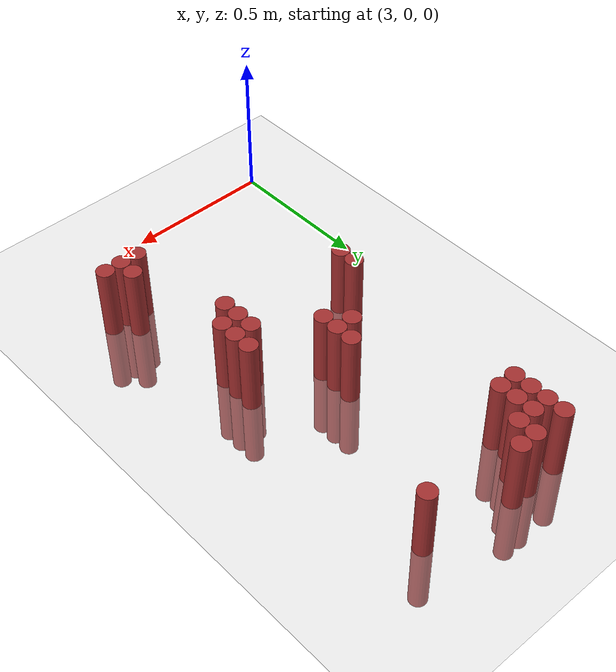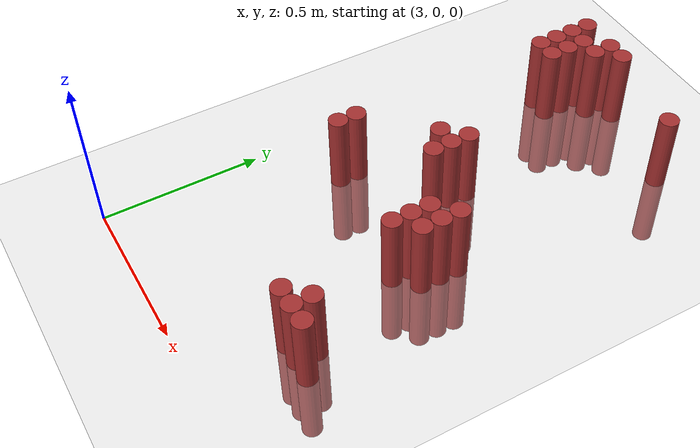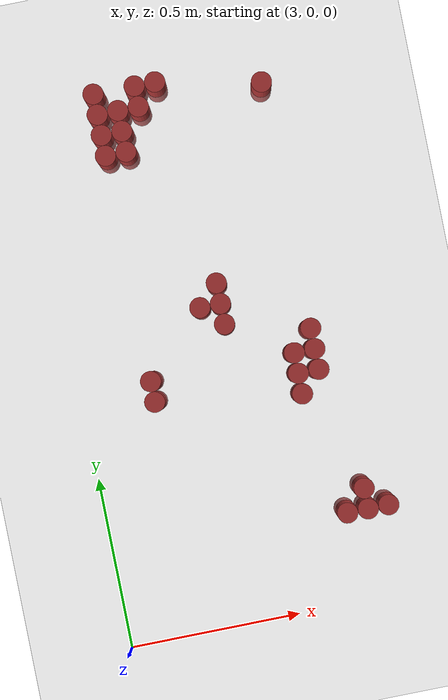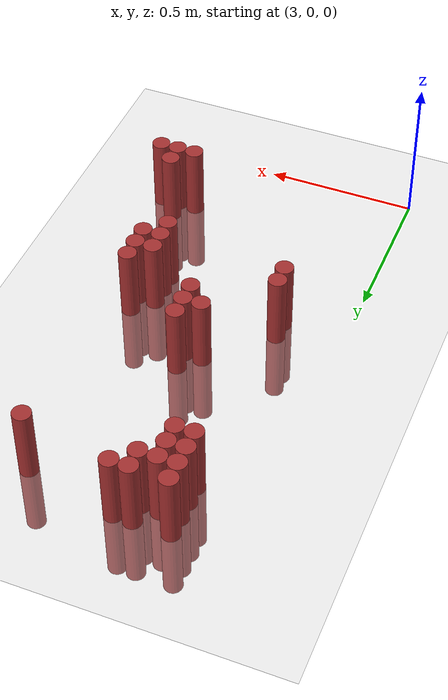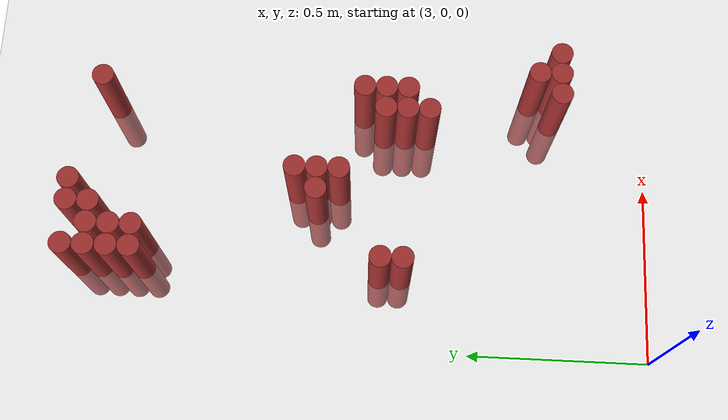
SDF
<sdf version="1.6">
 <world name="default">
  <model name="ground_plane">
   <static>1</static>
   <link name="link">
    <collision name="collision">
     <geometry><plane><normal>0 0 1</normal><size>100 100</size></plane></geometry>
     <surface><friction><ode><mu>100</mu><mu2>50</mu2></ode></friction></surface>
    </collision>
    <visual name="visual">
     <cast_shadows>0</cast_shadows>
     <geometry><plane><normal>0 0 1</normal><size>100 100</size></plane></geometry>
     <material>
      <script><uri>file://media/materials/scripts/gazebo.material</uri><name>Gazebo/Grey</name></script>
     </material>
    </visual>
   </link>
  </model>
  <model name="unit_cylinder_145">
   <static>1</static>
   <pose>3.210000 1.590000 0.000000 0.000000 0.000000 0.000000</pose>
   <link name="link">
    <inertial>
     <mass>1</mass>
     <inertia><ixx>0.145833</ixx><ixy>0</ixy><ixz>0</ixz><iyy>0.145833</iyy><iyz>0</iyz><izz>0.125</izz></inertia>
    </inertial>
    <collision name="collision">
     <geometry><cylinder><radius>0.030000</radius><length>0.5</length></cylinder></geometry>
    </collision>
    <visual name="visual">
     <geometry><cylinder><radius>0.030000</radius><length>0.5</length></cylinder></geometry>
     <material>
      <ambient>0.648000 0.192000 0.192000 1</ambient>
      <diffuse>0.648000 0.192000 0.192000 1</diffuse>
     </material>
     <material>
      <script><name>Gazebo/Grey</name><uri>file://media/materials/scripts/gazebo.material</uri></script>
     </material>
    </visual>
   </link>
  </model>
  <model name="unit_cylinder_146">
   <static>1</static>
   <pose>3.330000 1.590000 0.000000 0.000000 0.000000 0.000000</pose>
   <link name="link">
    <inertial>
     <mass>1</mass>
     <inertia><ixx>0.145833</ixx><ixy>0</ixy><ixz>0</ixz><iyy>0.145833</iyy><iyz>0</iyz><izz>0.125</izz></inertia>
    </inertial>
    <collision name="collision">
     <geometry><cylinder><radius>0.030000</radius><length>0.5</length></cylinder></geometry>
    </collision>
    <visual name="visual">
     <geometry><cylinder><radius>0.030000</radius><length>0.5</length></cylinder></geometry>
     <material>
      <ambient>0.648000 0.192000 0.192000 1</ambient>
      <diffuse>0.648000 0.192000 0.192000 1</diffuse>
     </material>
     <material>
      <script><name>Gazebo/Grey</name><uri>file://media/materials/scripts/gazebo.material</uri></script>
     </material>
    </visual>
   </link>
  </model>
  <model name="unit_cylinder_147">
   <static>1</static>
   <pose>3.390000 1.590000 0.000000 0.000000 0.000000 0.000000</pose>
   <link name="link">
    <inertial>
     <mass>1</mass>
     <inertia><ixx>0.145833</ixx><ixy>0</ixy><ixz>0</ixz><iyy>0.145833</iyy><iyz>0</iyz><izz>0.125</izz></inertia>
    </inertial>
    <collision name="collision">
     <geometry><cylinder><radius>0.030000</radius><length>0.5</length></cylinder></geometry>
    </collision>
    <visual name="visual">
     <geometry><cylinder><radius>0.030000</radius><length>0.5</length></cylinder></geometry>
     <material>
      <ambient>0.648000 0.192000 0.192000 1</ambient>
      <diffuse>0.648000 0.192000 0.192000 1</diffuse>
     </material>
     <material>
      <script><name>Gazebo/Grey</name><uri>file://media/materials/scripts/gazebo.material</uri></script>
     </material>
    </visual>
   </link>
  </model>
  <model name="unit_cylinder_156">
   <static>1</static>
   <pose>3.210000 1.530000 0.000000 0.000000 0.000000 0.000000</pose>
   <link name="link">
    <inertial>
     <mass>1</mass>
     <inertia><ixx>0.145833</ixx><ixy>0</ixy><ixz>0</ixz><iyy>0.145833</iyy><iyz>0</iyz><izz>0.125</izz></inertia>
    </inertial>
    <collision name="collision">
     <geometry><cylinder><radius>0.030000</radius><length>0.5</length></cylinder></geometry>
    </collision>
    <visual name="visual">
     <geometry><cylinder><radius>0.030000</radius><length>0.5</length></cylinder></geometry>
     <material>
      <ambient>0.648000 0.192000 0.192000 1</ambient>
      <diffuse>0.648000 0.192000 0.192000 1</diffuse>
     </material>
     <material>
      <script><name>Gazebo/Grey</name><uri>file://media/materials/scripts/gazebo.material</uri></script>
     </material>
    </visual>
   </link>
  </model>
  <model name="unit_cylinder_157">
   <static>1</static>
   <pose>3.270000 1.530000 0.000000 0.000000 0.000000 0.000000</pose>
   <link name="link">
    <inertial>
     <mass>1</mass>
     <inertia><ixx>0.145833</ixx><ixy>0</ixy><ixz>0</ixz><iyy>0.145833</iyy><iyz>0</iyz><izz>0.125</izz></inertia>
    </inertial>
    <collision name="collision">
     <geometry><cylinder><radius>0.030000</radius><length>0.5</length></cylinder></geometry>
    </collision>
    <visual name="visual">
     <geometry><cylinder><radius>0.030000</radius><length>0.5</length></cylinder></geometry>
     <material>
      <ambient>0.648000 0.192000 0.192000 1</ambient>
      <diffuse>0.648000 0.192000 0.192000 1</diffuse>
     </material>
     <material>
      <script><name>Gazebo/Grey</name><uri>file://media/materials/scripts/gazebo.material</uri></script>
     </material>
    </visual>
   </link>
  </model>
  <model name="unit_cylinder_158">
   <static>1</static>
   <pose>3.330000 1.530000 0.000000 0.000000 0.000000 0.000000</pose>
   <link name="link">
    <inertial>
     <mass>1</mass>
     <inertia><ixx>0.145833</ixx><ixy>0</ixy><ixz>0</ixz><iyy>0.145833</iyy><iyz>0</iyz><izz>0.125</izz></inertia>
    </inertial>
    <collision name="collision">
     <geometry><cylinder><radius>0.030000</radius><length>0.5</length></cylinder></geometry>
    </collision>
    <visual name="visual">
     <geometry><cylinder><radius>0.030000</radius><length>0.5</length></cylinder></geometry>
     <material>
      <ambient>0.648000 0.192000 0.192000 1</ambient>
      <diffuse>0.648000 0.192000 0.192000 1</diffuse>
     </material>
     <material>
      <script><name>Gazebo/Grey</name><uri>file://media/materials/scripts/gazebo.material</uri></script>
     </material>
    </visual>
   </link>
  </model>
  <model name="unit_cylinder_159">
   <static>1</static>
   <pose>3.690000 1.530000 0.000000 0.000000 0.000000 0.000000</pose>
   <link name="link">
    <inertial>
     <mass>1</mass>
     <inertia><ixx>0.145833</ixx><ixy>0</ixy><ixz>0</ixz><iyy>0.145833</iyy><iyz>0</iyz><izz>0.125</izz></inertia>
    </inertial>
    <collision name="collision">
     <geometry><cylinder><radius>0.030000</radius><length>0.5</length></cylinder></geometry>
    </collision>
    <visual name="visual">
     <geometry><cylinder><radius>0.030000</radius><length>0.5</length></cylinder></geometry>
     <material>
      <ambient>0.648000 0.192000 0.192000 1</ambient>
      <diffuse>0.648000 0.192000 0.192000 1</diffuse>
     </material>
     <material>
      <script><name>Gazebo/Grey</name><uri>file://media/materials/scripts/gazebo.material</uri></script>
     </material>
    </visual>
   </link>
  </model>
  <model name="unit_cylinder_164">
   <static>1</static>
   <pose>3.210000 1.470000 0.000000 0.000000 0.000000 0.000000</pose>
   <link name="link">
    <inertial>
     <mass>1</mass>
     <inertia><ixx>0.145833</ixx><ixy>0</ixy><ixz>0</ixz><iyy>0.145833</iyy><iyz>0</iyz><izz>0.125</izz></inertia>
    </inertial>
    <collision name="collision">
     <geometry><cylinder><radius>0.030000</radius><length>0.5</length></cylinder></geometry>
    </collision>
    <visual name="visual">
     <geometry><cylinder><radius>0.030000</radius><length>0.5</length></cylinder></geometry>
     <material>
      <ambient>0.648000 0.192000 0.192000 1</ambient>
      <diffuse>0.648000 0.192000 0.192000 1</diffuse>
     </material>
     <material>
      <script><name>Gazebo/Grey</name><uri>file://media/materials/scripts/gazebo.material</uri></script>
     </material>
    </visual>
   </link>
  </model>
  <model name="unit_cylinder_165">
   <static>1</static>
   <pose>3.270000 1.470000 0.000000 0.000000 0.000000 0.000000</pose>
   <link name="link">
    <inertial>
     <mass>1</mass>
     <inertia><ixx>0.145833</ixx><ixy>0</ixy><ixz>0</ixz><iyy>0.145833</iyy><iyz>0</iyz><izz>0.125</izz></inertia>
    </inertial>
    <collision name="collision">
     <geometry><cylinder><radius>0.030000</radius><length>0.5</length></cylinder></geometry>
    </collision>
    <visual name="visual">
     <geometry><cylinder><radius>0.030000</radius><length>0.5</length></cylinder></geometry>
     <material>
      <ambient>0.648000 0.192000 0.192000 1</ambient>
      <diffuse>0.648000 0.192000 0.192000 1</diffuse>
     </material>
     <material>
      <script><name>Gazebo/Grey</name><uri>file://media/materials/scripts/gazebo.material</uri></script>
     </material>
    </visual>
   </link>
  </model>
  <model name="unit_cylinder_168">
   <static>1</static>
   <pose>3.210000 1.410000 0.000000 0.000000 0.000000 0.000000</pose>
   <link name="link">
    <inertial>
     <mass>1</mass>
     <inertia><ixx>0.145833</ixx><ixy>0</ixy><ixz>0</ixz><iyy>0.145833</iyy><iyz>0</iyz><izz>0.125</izz></inertia>
    </inertial>
    <collision name="collision">
     <geometry><cylinder><radius>0.030000</radius><length>0.5</length></cylinder></geometry>
    </collision>
    <visual name="visual">
     <geometry><cylinder><radius>0.030000</radius><length>0.5</length></cylinder></geometry>
     <material>
      <ambient>0.648000 0.192000 0.192000 1</ambient>
      <diffuse>0.648000 0.192000 0.192000 1</diffuse>
     </material>
     <material>
      <script><name>Gazebo/Grey</name><uri>file://media/materials/scripts/gazebo.material</uri></script>
     </material>
    </visual>
   </link>
  </model>
  <model name="unit_cylinder_169">
   <static>1</static>
   <pose>3.270000 1.410000 0.000000 0.000000 0.000000 0.000000</pose>
   <link name="link">
    <inertial>
     <mass>1</mass>
     <inertia><ixx>0.145833</ixx><ixy>0</ixy><ixz>0</ixz><iyy>0.145833</iyy><iyz>0</iyz><izz>0.125</izz></inertia>
    </inertial>
    <collision name="collision">
     <geometry><cylinder><radius>0.030000</radius><length>0.5</length></cylinder></geometry>
    </collision>
    <visual name="visual">
     <geometry><cylinder><radius>0.030000</radius><length>0.5</length></cylinder></geometry>
     <material>
      <ambient>0.648000 0.192000 0.192000 1</ambient>
      <diffuse>0.648000 0.192000 0.192000 1</diffuse>
     </material>
     <material>
      <script><name>Gazebo/Grey</name><uri>file://media/materials/scripts/gazebo.material</uri></script>
     </material>
    </visual>
   </link>
  </model>
  <model name="unit_cylinder_183">
   <static>1</static>
   <pose>3.450000 0.990000 0.000000 0.000000 0.000000 0.000000</pose>
   <link name="link">
    <inertial>
     <mass>1</mass>
     <inertia><ixx>0.145833</ixx><ixy>0</ixy><ixz>0</ixz><iyy>0.145833</iyy><iyz>0</iyz><izz>0.125</izz></inertia>
    </inertial>
    <collision name="collision">
     <geometry><cylinder><radius>0.030000</radius><length>0.5</length></cylinder></geometry>
    </collision>
    <visual name="visual">
     <geometry><cylinder><radius>0.030000</radius><length>0.5</length></cylinder></geometry>
     <material>
      <ambient>0.648000 0.192000 0.192000 1</ambient>
      <diffuse>0.648000 0.192000 0.192000 1</diffuse>
     </material>
     <material>
      <script><name>Gazebo/Grey</name><uri>file://media/materials/scripts/gazebo.material</uri></script>
     </material>
    </visual>
   </link>
  </model>
  <model name="unit_cylinder_185">
   <static>1</static>
   <pose>3.390000 0.930000 0.000000 0.000000 0.000000 0.000000</pose>
   <link name="link">
    <inertial>
     <mass>1</mass>
     <inertia><ixx>0.145833</ixx><ixy>0</ixy><ixz>0</ixz><iyy>0.145833</iyy><iyz>0</iyz><izz>0.125</izz></inertia>
    </inertial>
    <collision name="collision">
     <geometry><cylinder><radius>0.030000</radius><length>0.5</length></cylinder></geometry>
    </collision>
    <visual name="visual">
     <geometry><cylinder><radius>0.030000</radius><length>0.5</length></cylinder></geometry>
     <material>
      <ambient>0.648000 0.192000 0.192000 1</ambient>
      <diffuse>0.648000 0.192000 0.192000 1</diffuse>
     </material>
     <material>
      <script><name>Gazebo/Grey</name><uri>file://media/materials/scripts/gazebo.material</uri></script>
     </material>
    </visual>
   </link>
  </model>
  <model name="unit_cylinder_186">
   <static>1</static>
   <pose>3.450000 0.930000 0.000000 0.000000 0.000000 0.000000</pose>
   <link name="link">
    <inertial>
     <mass>1</mass>
     <inertia><ixx>0.145833</ixx><ixy>0</ixy><ixz>0</ixz><iyy>0.145833</iyy><iyz>0</iyz><izz>0.125</izz></inertia>
    </inertial>
    <collision name="collision">
     <geometry><cylinder><radius>0.030000</radius><length>0.5</length></cylinder></geometry>
    </collision>
    <visual name="visual">
     <geometry><cylinder><radius>0.030000</radius><length>0.5</length></cylinder></geometry>
     <material>
      <ambient>0.648000 0.192000 0.192000 1</ambient>
      <diffuse>0.648000 0.192000 0.192000 1</diffuse>
     </material>
     <material>
      <script><name>Gazebo/Grey</name><uri>file://media/materials/scripts/gazebo.material</uri></script>
     </material>
    </visual>
   </link>
  </model>
  <model name="unit_cylinder_187">
   <static>1</static>
   <pose>3.450000 0.870000 0.000000 0.000000 0.000000 0.000000</pose>
   <link name="link">
    <inertial>
     <mass>1</mass>
     <inertia><ixx>0.145833</ixx><ixy>0</ixy><ixz>0</ixz><iyy>0.145833</iyy><iyz>0</iyz><izz>0.125</izz></inertia>
    </inertial>
    <collision name="collision">
     <geometry><cylinder><radius>0.030000</radius><length>0.5</length></cylinder></geometry>
    </collision>
    <visual name="visual">
     <geometry><cylinder><radius>0.030000</radius><length>0.5</length></cylinder></geometry>
     <material>
      <ambient>0.648000 0.192000 0.192000 1</ambient>
      <diffuse>0.648000 0.192000 0.192000 1</diffuse>
     </material>
     <material>
      <script><name>Gazebo/Grey</name><uri>file://media/materials/scripts/gazebo.material</uri></script>
     </material>
    </visual>
   </link>
  </model>
  <model name="unit_cylinder_188">
   <static>1</static>
   <pose>3.690000 0.810000 0.000000 0.000000 0.000000 0.000000</pose>
   <link name="link">
    <inertial>
     <mass>1</mass>
     <inertia><ixx>0.145833</ixx><ixy>0</ixy><ixz>0</ixz><iyy>0.145833</iyy><iyz>0</iyz><izz>0.125</izz></inertia>
    </inertial>
    <collision name="collision">
     <geometry><cylinder><radius>0.030000</radius><length>0.5</length></cylinder></geometry>
    </collision>
    <visual name="visual">
     <geometry><cylinder><radius>0.030000</radius><length>0.5</length></cylinder></geometry>
     <material>
      <ambient>0.648000 0.192000 0.192000 1</ambient>
      <diffuse>0.648000 0.192000 0.192000 1</diffuse>
     </material>
     <material>
      <script><name>Gazebo/Grey</name><uri>file://media/materials/scripts/gazebo.material</uri></script>
     </material>
    </visual>
   </link>
  </model>
  <model name="unit_cylinder_189">
   <static>1</static>
   <pose>3.210000 0.750000 0.000000 0.000000 0.000000 0.000000</pose>
   <link name="link">
    <inertial>
     <mass>1</mass>
     <inertia><ixx>0.145833</ixx><ixy>0</ixy><ixz>0</ixz><iyy>0.145833</iyy><iyz>0</iyz><izz>0.125</izz></inertia>
    </inertial>
    <collision name="collision">
     <geometry><cylinder><radius>0.030000</radius><length>0.5</length></cylinder></geometry>
    </collision>
    <visual name="visual">
     <geometry><cylinder><radius>0.030000</radius><length>0.5</length></cylinder></geometry>
     <material>
      <ambient>0.648000 0.192000 0.192000 1</ambient>
      <diffuse>0.648000 0.192000 0.192000 1</diffuse>
     </material>
     <material>
      <script><name>Gazebo/Grey</name><uri>file://media/materials/scripts/gazebo.material</uri></script>
     </material>
    </visual>
   </link>
  </model>
  <model name="unit_cylinder_190">
   <static>1</static>
   <pose>3.630000 0.750000 0.000000 0.000000 0.000000 0.000000</pose>
   <link name="link">
    <inertial>
     <mass>1</mass>
     <inertia><ixx>0.145833</ixx><ixy>0</ixy><ixz>0</ixz><iyy>0.145833</iyy><iyz>0</iyz><izz>0.125</izz></inertia>
    </inertial>
    <collision name="collision">
     <geometry><cylinder><radius>0.030000</radius><length>0.5</length></cylinder></geometry>
    </collision>
    <visual name="visual">
     <geometry><cylinder><radius>0.030000</radius><length>0.5</length></cylinder></geometry>
     <material>
      <ambient>0.648000 0.192000 0.192000 1</ambient>
      <diffuse>0.648000 0.192000 0.192000 1</diffuse>
     </material>
     <material>
      <script><name>Gazebo/Grey</name><uri>file://media/materials/scripts/gazebo.material</uri></script>
     </material>
    </visual>
   </link>
  </model>
  <model name="unit_cylinder_191">
   <static>1</static>
   <pose>3.690000 0.750000 0.000000 0.000000 0.000000 0.000000</pose>
   <link name="link">
    <inertial>
     <mass>1</mass>
     <inertia><ixx>0.145833</ixx><ixy>0</ixy><ixz>0</ixz><iyy>0.145833</iyy><iyz>0</iyz><izz>0.125</izz></inertia>
    </inertial>
    <collision name="collision">
     <geometry><cylinder><radius>0.030000</radius><length>0.5</length></cylinder></geometry>
    </collision>
    <visual name="visual">
     <geometry><cylinder><radius>0.030000</radius><length>0.5</length></cylinder></geometry>
     <material>
      <ambient>0.648000 0.192000 0.192000 1</ambient>
      <diffuse>0.648000 0.192000 0.192000 1</diffuse>
     </material>
     <material>
      <script><name>Gazebo/Grey</name><uri>file://media/materials/scripts/gazebo.material</uri></script>
     </material>
    </visual>
   </link>
  </model>
  <model name="unit_cylinder_195">
   <static>1</static>
   <pose>3.210000 0.690000 0.000000 0.000000 0.000000 0.000000</pose>
   <link name="link">
    <inertial>
     <mass>1</mass>
     <inertia><ixx>0.145833</ixx><ixy>0</ixy><ixz>0</ixz><iyy>0.145833</iyy><iyz>0</iyz><izz>0.125</izz></inertia>
    </inertial>
    <collision name="collision">
     <geometry><cylinder><radius>0.030000</radius><length>0.5</length></cylinder></geometry>
    </collision>
    <visual name="visual">
     <geometry><cylinder><radius>0.030000</radius><length>0.5</length></cylinder></geometry>
     <material>
      <ambient>0.648000 0.192000 0.192000 1</ambient>
      <diffuse>0.648000 0.192000 0.192000 1</diffuse>
     </material>
     <material>
      <script><name>Gazebo/Grey</name><uri>file://media/materials/scripts/gazebo.material</uri></script>
     </material>
    </visual>
   </link>
  </model>
  <model name="unit_cylinder_196">
   <static>1</static>
   <pose>3.630000 0.690000 0.000000 0.000000 0.000000 0.000000</pose>
   <link name="link">
    <inertial>
     <mass>1</mass>
     <inertia><ixx>0.145833</ixx><ixy>0</ixy><ixz>0</ixz><iyy>0.145833</iyy><iyz>0</iyz><izz>0.125</izz></inertia>
    </inertial>
    <collision name="collision">
     <geometry><cylinder><radius>0.030000</radius><length>0.5</length></cylinder></geometry>
    </collision>
    <visual name="visual">
     <geometry><cylinder><radius>0.030000</radius><length>0.5</length></cylinder></geometry>
     <material>
      <ambient>0.648000 0.192000 0.192000 1</ambient>
      <diffuse>0.648000 0.192000 0.192000 1</diffuse>
     </material>
     <material>
      <script><name>Gazebo/Grey</name><uri>file://media/materials/scripts/gazebo.material</uri></script>
     </material>
    </visual>
   </link>
  </model>
  <model name="unit_cylinder_197">
   <static>1</static>
   <pose>3.690000 0.690000 0.000000 0.000000 0.000000 0.000000</pose>
   <link name="link">
    <inertial>
     <mass>1</mass>
     <inertia><ixx>0.145833</ixx><ixy>0</ixy><ixz>0</ixz><iyy>0.145833</iyy><iyz>0</iyz><izz>0.125</izz></inertia>
    </inertial>
    <collision name="collision">
     <geometry><cylinder><radius>0.030000</radius><length>0.5</length></cylinder></geometry>
    </collision>
    <visual name="visual">
     <geometry><cylinder><radius>0.030000</radius><length>0.5</length></cylinder></geometry>
     <material>
      <ambient>0.648000 0.192000 0.192000 1</ambient>
      <diffuse>0.648000 0.192000 0.192000 1</diffuse>
     </material>
     <material>
      <script><name>Gazebo/Grey</name><uri>file://media/materials/scripts/gazebo.material</uri></script>
     </material>
    </visual>
   </link>
  </model>
  <model name="unit_cylinder_201">
   <static>1</static>
   <pose>3.630000 0.630000 0.000000 0.000000 0.000000 0.000000</pose>
   <link name="link">
    <inertial>
     <mass>1</mass>
     <inertia><ixx>0.145833</ixx><ixy>0</ixy><ixz>0</ixz><iyy>0.145833</iyy><iyz>0</iyz><izz>0.125</izz></inertia>
    </inertial>
    <collision name="collision">
     <geometry><cylinder><radius>0.030000</radius><length>0.5</length></cylinder></geometry>
    </collision>
    <visual name="visual">
     <geometry><cylinder><radius>0.030000</radius><length>0.5</length></cylinder></geometry>
     <material>
      <ambient>0.648000 0.192000 0.192000 1</ambient>
      <diffuse>0.648000 0.192000 0.192000 1</diffuse>
     </material>
     <material>
      <script><name>Gazebo/Grey</name><uri>file://media/materials/scripts/gazebo.material</uri></script>
     </material>
    </visual>
   </link>
  </model>
  <model name="unit_cylinder_209">
   <static>1</static>
   <pose>3.750000 0.330000 0.000000 0.000000 0.000000 0.000000</pose>
   <link name="link">
    <inertial>
     <mass>1</mass>
     <inertia><ixx>0.145833</ixx><ixy>0</ixy><ixz>0</ixz><iyy>0.145833</iyy><iyz>0</iyz><izz>0.125</izz></inertia>
    </inertial>
    <collision name="collision">
     <geometry><cylinder><radius>0.030000</radius><length>0.5</length></cylinder></geometry>
    </collision>
    <visual name="visual">
     <geometry><cylinder><radius>0.030000</radius><length>0.5</length></cylinder></geometry>
     <material>
      <ambient>0.648000 0.192000 0.192000 1</ambient>
      <diffuse>0.648000 0.192000 0.192000 1</diffuse>
     </material>
     <material>
      <script><name>Gazebo/Grey</name><uri>file://media/materials/scripts/gazebo.material</uri></script>
     </material>
    </visual>
   </link>
  </model>
  <model name="unit_cylinder_212">
   <static>1</static>
   <pose>3.690000 0.270000 0.000000 0.000000 0.000000 0.000000</pose>
   <link name="link">
    <inertial>
     <mass>1</mass>
     <inertia><ixx>0.145833</ixx><ixy>0</ixy><ixz>0</ixz><iyy>0.145833</iyy><iyz>0</iyz><izz>0.125</izz></inertia>
    </inertial>
    <collision name="collision">
     <geometry><cylinder><radius>0.030000</radius><length>0.5</length></cylinder></geometry>
    </collision>
    <visual name="visual">
     <geometry><cylinder><radius>0.030000</radius><length>0.5</length></cylinder></geometry>
     <material>
      <ambient>0.648000 0.192000 0.192000 1</ambient>
      <diffuse>0.648000 0.192000 0.192000 1</diffuse>
     </material>
     <material>
      <script><name>Gazebo/Grey</name><uri>file://media/materials/scripts/gazebo.material</uri></script>
     </material>
    </visual>
   </link>
  </model>
  <model name="unit_cylinder_213">
   <static>1</static>
   <pose>3.750000 0.270000 0.000000 0.000000 0.000000 0.000000</pose>
   <link name="link">
    <inertial>
     <mass>1</mass>
     <inertia><ixx>0.145833</ixx><ixy>0</ixy><ixz>0</ixz><iyy>0.145833</iyy><iyz>0</iyz><izz>0.125</izz></inertia>
    </inertial>
    <collision name="collision">
     <geometry><cylinder><radius>0.030000</radius><length>0.5</length></cylinder></geometry>
    </collision>
    <visual name="visual">
     <geometry><cylinder><radius>0.030000</radius><length>0.5</length></cylinder></geometry>
     <material>
      <ambient>0.648000 0.192000 0.192000 1</ambient>
      <diffuse>0.648000 0.192000 0.192000 1</diffuse>
     </material>
     <material>
      <script><name>Gazebo/Grey</name><uri>file://media/materials/scripts/gazebo.material</uri></script>
     </material>
    </visual>
   </link>
  </model>
  <model name="unit_cylinder_214">
   <static>1</static>
   <pose>3.810000 0.270000 0.000000 0.000000 0.000000 0.000000</pose>
   <link name="link">
    <inertial>
     <mass>1</mass>
     <inertia><ixx>0.145833</ixx><ixy>0</ixy><ixz>0</ixz><iyy>0.145833</iyy><iyz>0</iyz><izz>0.125</izz></inertia>
    </inertial>
    <collision name="collision">
     <geometry><cylinder><radius>0.030000</radius><length>0.5</length></cylinder></geometry>
    </collision>
    <visual name="visual">
     <geometry><cylinder><radius>0.030000</radius><length>0.5</length></cylinder></geometry>
     <material>
      <ambient>0.648000 0.192000 0.192000 1</ambient>
      <diffuse>0.648000 0.192000 0.192000 1</diffuse>
     </material>
     <material>
      <script><name>Gazebo/Grey</name><uri>file://media/materials/scripts/gazebo.material</uri></script>
     </material>
    </visual>
   </link>
  </model>
 </world>
</sdf>
